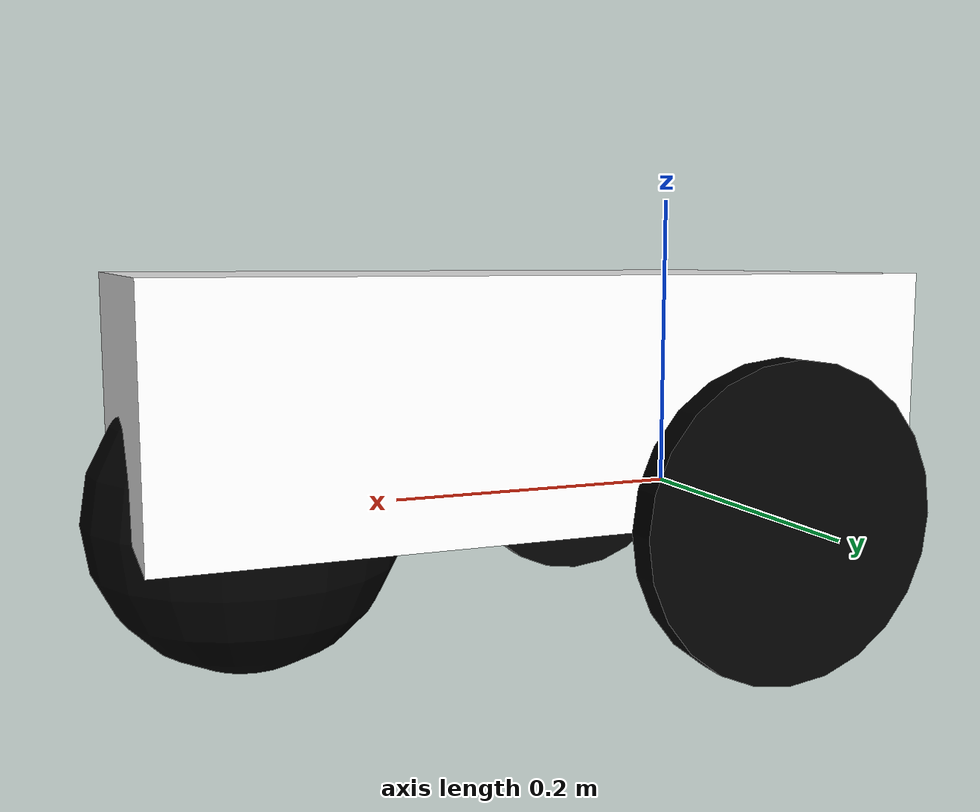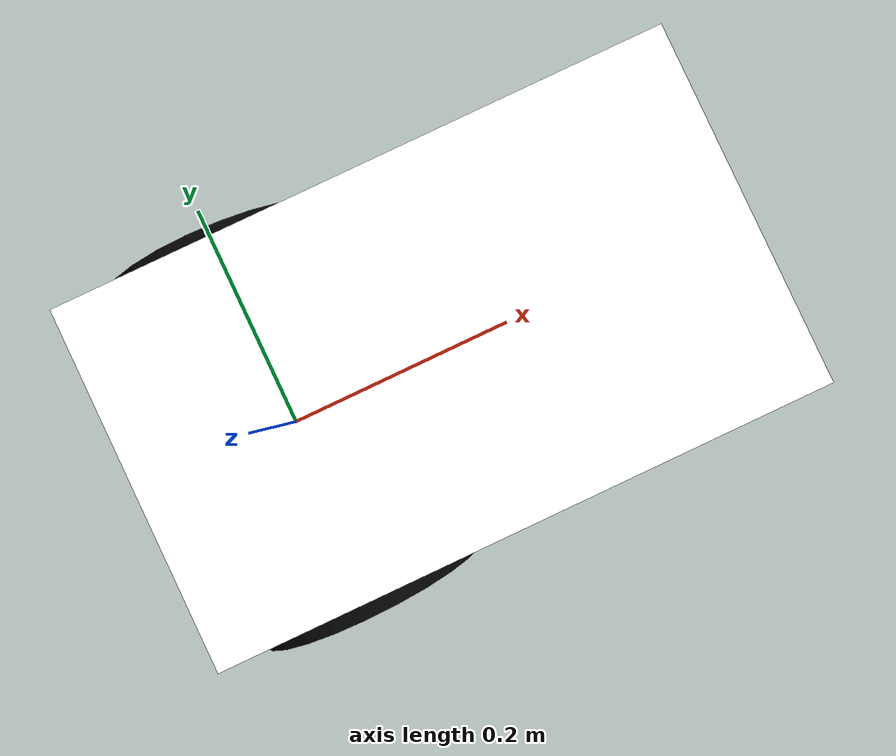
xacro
<?xml version="1.0"?>
<robot xmlns:xacro="http://www.ros.org/wiki/xacro"  >

    <xacro:include filename="inertial_macros.xacro"/>

    <material name="white">
        <color rgba="1 1 1 1" />
    </material>

    <material name="orange">
        <color rgba="1 0.3 0.1 1" />
    </material>

    <material name="blue">
        <color rgba="0.2 0.2 1 1" />
    </material>

    <material name="black">
        <color rgba="0 0 0 1" />
    </material>

    <!-- Base Link-->

    <link name="base_link">

    </link>

    <!-- Chassis Link-->

    <joint name="chassis_joint" type="fixed">
        <parent link="base_link"/>
        <child link="chassis"/>
        <origin xyz="-0.1 0 0"/>
    </joint>

    <link name="chassis">
        <visual>
            <origin xyz="0.2375 0 0.075"/>
            <geometry>
                <box size="0.475 0.28 0.15"/>
            </geometry>
            <material name="white"/>
        </visual>
        <collision>
            <origin xyz="0.2375 0 0.075"/>
            <geometry>
                <box size="0.475 0.28 0.15"/>
            </geometry>
        </collision>
        <xacro:inertial_box mass="0.5" x="0.475" y="0.28" z="0.15">
            <origin xyz="0.2375 0 0.075" rpy="0 0 0"/>
        </xacro:inertial_box>
    </link>

    <gazebo reference="chassis">
        <material>Gazebo/White</material>
    </gazebo>

    <!-- Left Wheel Link-->

    <joint name="left_wheel_joint" type="continuous">
        <parent link="base_link"/>
        <child link="left_wheel"/>
        <origin xyz="0 0.150 0" rpy="${pi/2} 0 0"/>
        <axis xyz="0 0 1"/>
    </joint>

    <link name="left_wheel">
        <visual>
            <geometry>
                <cylinder radius="0.1" length="0.02"/>
            </geometry>
            <material name="black"/>
        </visual>
        <collision>
            <geometry>
                <cylinder radius="0.1" length="0.02"/>
            </geometry>
        </collision>
        <xacro:inertial_cylinder mass="0.1" length="0.02" radius="0.1">
            <origin xyz="0 0 0" rpy="0 0 0"/>
        </xacro:inertial_cylinder>

    </link>

    <gazebo reference="left_wheel">
        <material>Gazebo/Black</material>
    </gazebo>

    <!-- Right Wheel Link-->

    <joint name="right_wheel_joint" type="continuous">
        <parent link="base_link"/>
        <child link="right_wheel"/>
        <origin xyz="0 -0.150 0" rpy="-${pi/2} 0 0"/>
        <axis xyz="0 0 -1"/>
    </joint>

    <link name="right_wheel">
        <visual>
            <geometry>
                <cylinder radius="0.1" length="0.02"/>
            </geometry>
            <material name="black"/>
        </visual>
        <collision>
            <geometry>
                <cylinder radius="0.1" length="0.02"/>
            </geometry>
        </collision>
        <xacro:inertial_cylinder mass="0.1" length="0.02" radius="0.1">
            <origin xyz="0 0 0" rpy="0 0 0"/>
        </xacro:inertial_cylinder>

    </link>

    <gazebo reference="right_wheel">
        <material>Gazebo/Black</material>
    </gazebo>

<!-- Caster wheel link-->

<joint name="caster_wheel_joint" type="fixed">
    <parent link="chassis"/>
    <child link="caster_wheel"/>
    <origin xyz="0.4 0 0"/>
</joint>

<link name="caster_wheel">
    <visual>
        <geometry>
            <sphere radius="0.1"/>
        </geometry>
        <material name="black"/>
    </visual>
    <collision>
        <geometry>
            <sphere radius="0.1"/>
        </geometry>
    </collision>
    <xacro:inertial_sphere mass="0.1" radius="0.1">
        <origin xyz="0 0 0" rpy="0 0 0"/>
    </xacro:inertial_sphere>
</link>

<gazebo reference="caster_wheel">
        <material>Gazebo/Black</material>
        <mu1 value="0.001"/>
        <mu2 value="0.001"/>
    </gazebo>

</robot>
